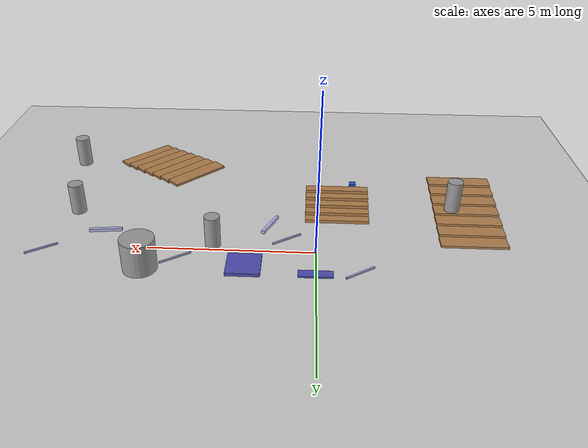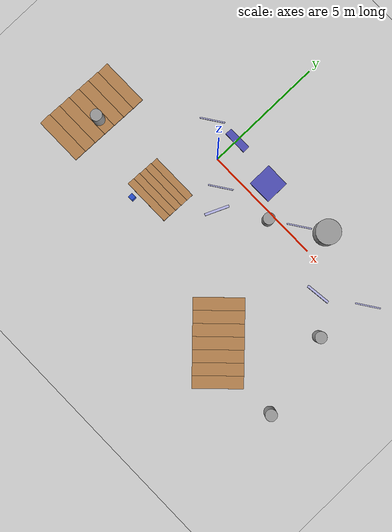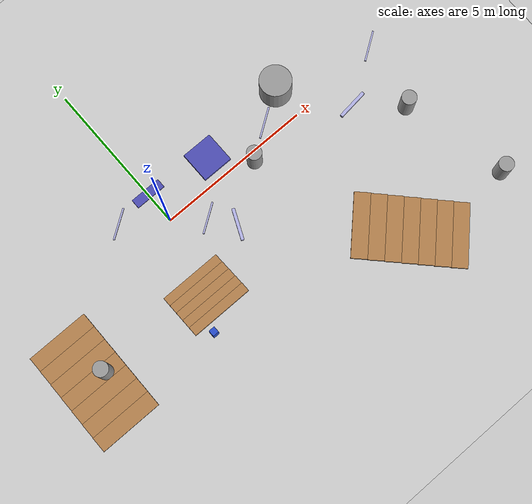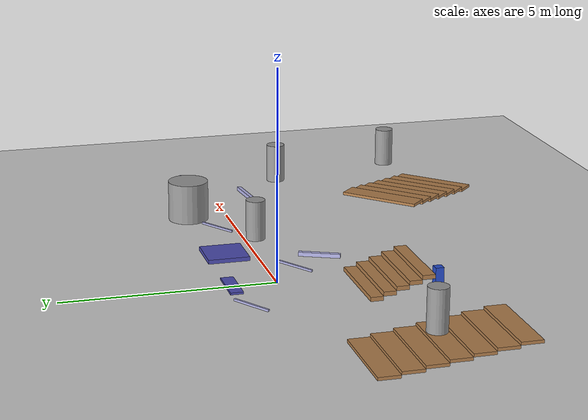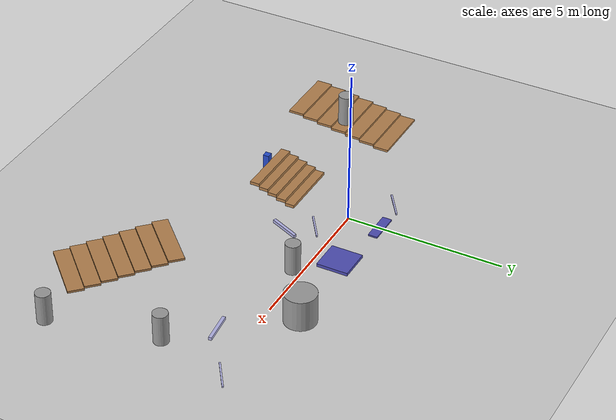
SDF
<sdf version="1.7">
 <world name="default">
  <light name="sun" type="directional">
   <pose>0 0 10 0 -0 0</pose>
   <diffuse>0.8 0.8 0.8 1</diffuse>
   <specular>0.2 0.2 0.2 1</specular>
   <attenuation>
    <range>1000</range>
    <constant>0.9</constant>
    <linear>0.01</linear>
    <quadratic>0.001</quadratic>
   </attenuation>
   <direction>-0.5 0.1 -0.9</direction>
   <spot><inner_angle>0</inner_angle><outer_angle>0</outer_angle><falloff>0</falloff></spot>
  </light>
  <model name="ground_plane">
   <static>1</static>
   <link name="link">
    <collision name="collision">
     <geometry><plane><normal>0 0 1</normal><size>100 100</size></plane></geometry>
     <surface>
      <contact><collide_bitmask>65535</collide_bitmask></contact>
      <friction><ode><mu>100</mu><mu2>50</mu2></ode></friction>
     </surface>
    </collision>
    <visual name="visual">
     <cast_shadows>0</cast_shadows>
     <geometry><plane><normal>0 0 1</normal><size>100 100</size></plane></geometry>
     <material>
      <script><uri>file://media/materials/scripts/gazebo.material</uri><name>Gazebo/Grey</name></script>
     </material>
    </visual>
   </link>
  </model>
  <gravity>0 0 -9.8</gravity>
  <magnetic_field>6e-06 2.3e-05 -4.2e-05</magnetic_field>
  <atmosphere type="adiabatic"/>
  <physics type="ode">
   <max_step_size>0.001</max_step_size>
   <real_time_factor>1</real_time_factor>
   <real_time_update_rate>1000</real_time_update_rate>
  </physics>
  <scene><ambient>0.4 0.4 0.4 1</ambient><background>0.7 0.7 0.7 1</background><shadows>1</shadows></scene>
  <spherical_coordinates>
   <surface_model>EARTH_WGS84</surface_model>
   <latitude_deg>0</latitude_deg>
   <longitude_deg>0</longitude_deg>
   <elevation>0</elevation>
   <heading_deg>0</heading_deg>
  </spherical_coordinates>
  <model name="block_h0.05">
   <link name="link">
    <inertial>
     <mass>1</mass>
     <inertia>
      <ixx>0.166667</ixx>
      <ixy>0</ixy>
      <ixz>0</ixz>
      <iyy>0.166667</iyy>
      <iyz>0</iyz>
      <izz>0.166667</izz>
     </inertia>
    </inertial>
    <visual name="visual">
     <geometry><box><size>1 0.3 0.05</size></box></geometry>
     <material>
      <script><name>Gazebo/Grey</name><uri>file://media/materials/scripts/gazebo.material</uri></script>
      <shader type="pixel"><normal_map>__default__</normal_map></shader>
      <ambient>0.3 0.3 0.7 1</ambient>
      <diffuse>0.7 0.7 0.7 1</diffuse>
      <specular>0.01 0.01 0.01 1</specular>
      <emissive>0 0 0 1</emissive>
     </material>
    </visual>
    <collision name="collision">
     <geometry><box><size>1 0.3 0.05</size></box></geometry>
     <surface>
      <friction>
       <ode><mu>1</mu><mu2>1</mu2><fdir1>0 0 0</fdir1><slip1>0</slip1><slip2>0</slip2></ode>
       <torsional>
        <coefficient>1</coefficient>
        <patch_radius>0</patch_radius>
        <surface_radius>0</surface_radius>
        <use_patch_radius>1</use_patch_radius>
        <ode><slip>0</slip></ode>
       </torsional>
      </friction>
      <bounce><restitution_coefficient>0</restitution_coefficient><threshold>1e+06</threshold></bounce>
      <contact>
       <collide_without_contact>0</collide_without_contact>
       <collide_without_contact_bitmask>1</collide_without_contact_bitmask>
       <collide_bitmask>1</collide_bitmask>
       <ode>
        <soft_cfm>0</soft_cfm>
        <soft_erp>0.2</soft_erp>
        <kp>1e+13</kp>
        <kd>1</kd>
        <max_vel>0.01</max_vel>
        <min_depth>0</min_depth>
       </ode>
       <bullet>
        <split_impulse>1</split_impulse>
        <split_impulse_penetration_threshold>-0.01</split_impulse_penetration_threshold>
        <soft_cfm>0</soft_cfm>
        <soft_erp>0.2</soft_erp>
        <kp>1e+13</kp>
        <kd>1</kd>
       </bullet>
      </contact>
     </surface>
    </collision>
   </link>
   <static>1</static>
   <pose>0.013429 1.05664 0.022806 0 -0 0</pose>
  </model>
  <model name="piple_0.05">
   <link name="link">
    <inertial>
     <mass>1</mass>
     <inertia>
      <ixx>0.166667</ixx>
      <ixy>0</ixy>
      <ixz>0</ixz>
      <iyy>0.166667</iyy>
      <iyz>0</iyz>
      <izz>0.166667</izz>
     </inertia>
    </inertial>
    <pose>0 0 0.05 0 -0 0</pose>
    <visual name="visual">
     <geometry><box><size>1 0.05 0.05</size></box></geometry>
     <material>
      <script><name>Gazebo/Grey</name><uri>file://media/materials/scripts/gazebo.material</uri></script>
      <shader type="pixel"><normal_map>__default__</normal_map></shader>
      <ambient>0.3 0.3 0.9 1</ambient>
      <diffuse>0.7 0.7 0.9 1</diffuse>
      <specular>0.01 0.01 0.01 1</specular>
      <emissive>0 0 0 1</emissive>
     </material>
    </visual>
    <collision name="collision">
     <geometry><box><size>1 0.05 0.05</size></box></geometry>
     <surface>
      <friction>
       <ode><mu>1</mu><mu2>1</mu2><fdir1>0 0 0</fdir1><slip1>0</slip1><slip2>0</slip2></ode>
       <torsional>
        <coefficient>1</coefficient>
        <patch_radius>0</patch_radius>
        <surface_radius>0</surface_radius>
        <use_patch_radius>1</use_patch_radius>
        <ode><slip>0</slip></ode>
       </torsional>
      </friction>
      <bounce><restitution_coefficient>0</restitution_coefficient><threshold>1e+06</threshold></bounce>
      <contact>
       <collide_without_contact>0</collide_without_contact>
       <collide_without_contact_bitmask>1</collide_without_contact_bitmask>
       <collide_bitmask>1</collide_bitmask>
       <ode>
        <soft_cfm>0</soft_cfm>
        <soft_erp>0.2</soft_erp>
        <kp>1e+13</kp>
        <kd>1</kd>
        <max_vel>0.01</max_vel>
        <min_depth>0</min_depth>
       </ode>
       <bullet>
        <split_impulse>1</split_impulse>
        <split_impulse_penetration_threshold>-0.01</split_impulse_penetration_threshold>
        <soft_cfm>0</soft_cfm>
        <soft_erp>0.2</soft_erp>
        <kp>1e+13</kp>
        <kd>1</kd>
       </bullet>
      </contact>
     </surface>
    </collision>
   </link>
   <static>1</static>
   <pose>-1.24232 0.917305 -0.025554 0 -0 0.596594</pose>
  </model>
  <model name="stair_h0.1">
   <pose>-0.659716 -2.43729 0 0 -0 0</pose>
   <link name="Stairs_14">
    <visual name="Stairs_14_Visual_0">
     <pose>0 0.6 0.05 0 -0 0</pose>
     <geometry><box><size>2 0.3 0.1</size></box></geometry>
     <material>
      <script><uri>file://media/materials/scripts/gazebo.material</uri><name>Gazebo/Wood</name></script>
      <ambient>1 1 1 1</ambient>
     </material>
     <meta><layer>0</layer></meta>
    </visual>
    <collision name="Stairs_14_Collision_0">
     <geometry><box><size>2 0.3 0.1</size></box></geometry>
     <pose>0 0.6 0.05 0 -0 0</pose>
    </collision>
    <visual name="Stairs_14_Visual_1">
     <pose>0 0.3 0.15 0 -0 0</pose>
     <geometry><box><size>2 0.3 0.1</size></box></geometry>
     <material>
      <script><uri>file://media/materials/scripts/gazebo.material</uri><name>Gazebo/Wood</name></script>
      <ambient>1 1 1 1</ambient>
     </material>
     <meta><layer>0</layer></meta>
    </visual>
    <collision name="Stairs_14_Collision_1">
     <geometry><box><size>2 0.3 0.1</size></box></geometry>
     <pose>0 0.3 0.15 0 -0 0</pose>
    </collision>
    <visual name="Stairs_14_Visual_2">
     <pose>0 0 0.25 0 -0 0</pose>
     <geometry><box><size>2 0.3 0.1</size></box></geometry>
     <material>
      <script><uri>file://media/materials/scripts/gazebo.material</uri><name>Gazebo/Wood</name></script>
      <ambient>1 1 1 1</ambient>
     </material>
     <meta><layer>0</layer></meta>
    </visual>
    <collision name="Stairs_14_Collision_2">
     <geometry><box><size>2 0.3 0.1</size></box></geometry>
     <pose>0 0 0.25 0 -0 0</pose>
    </collision>
    <visual name="Stairs_14_Visual_3">
     <pose>0 -0.3 0.35 0 -0 0</pose>
     <geometry><box><size>2 0.3 0.1</size></box></geometry>
     <material>
      <script><uri>file://media/materials/scripts/gazebo.material</uri><name>Gazebo/Wood</name></script>
      <ambient>1 1 1 1</ambient>
     </material>
     <meta><layer>0</layer></meta>
    </visual>
    <collision name="Stairs_14_Collision_3">
     <geometry><box><size>2 0.3 0.1</size></box></geometry>
     <pose>0 -0.3 0.35 0 -0 0</pose>
    </collision>
    <visual name="Stairs_14_Visual_4">
     <pose>0 -0.6 0.45 0 -0 0</pose>
     <geometry><box><size>2 0.3 0.1</size></box></geometry>
     <material>
      <script><uri>file://media/materials/scripts/gazebo.material</uri><name>Gazebo/Wood</name></script>
      <ambient>1 1 1 1</ambient>
     </material>
     <meta><layer>0</layer></meta>
    </visual>
    <collision name="Stairs_14_Collision_4">
     <geometry><box><size>2 0.3 0.1</size></box></geometry>
     <pose>0 -0.6 0.45 0 -0 0</pose>
    </collision>
   </link>
   <static>1</static>
  </model>
  <model name="block_0.5">
   <link name="link_1">
    <inertial>
     <mass>1.79769e+308</mass>
     <inertia>
      <ixx>1.79769e+308</ixx>
      <ixy>0</ixy>
      <ixz>0</ixz>
      <iyy>1.79769e+308</iyy>
      <iyz>0</iyz>
      <izz>1.79769e+308</izz>
     </inertia>
    </inertial>
    <pose>0 0 0.25 0 -0 0</pose>
    <kinematic>1</kinematic>
    <visual name="visual">
     <geometry><box><size>0.2 0.2 0.5</size></box></geometry>
     <material>
      <lighting>1</lighting>
      <script><uri>file://media/materials/scripts/gazebo.material</uri><name>Gazebo/Blue</name></script>
      <shader type="pixel"><normal_map>__default__</normal_map></shader>
      <ambient>0.5 0.3 0 1</ambient>
      <diffuse>0.7 0.7 0.8 1</diffuse>
      <specular>0.01 0.01 0.01 1</specular>
      <emissive>0.5 0 0 1</emissive>
     </material>
    </visual>
    <collision name="collision_9">
     <geometry><box><size>0.2 0.2 0.5</size></box></geometry>
     <surface>
      <friction>
       <ode><mu>1</mu><mu2>1</mu2><fdir1>0 0 0</fdir1><slip1>0</slip1><slip2>0</slip2></ode>
       <torsional>
        <coefficient>1</coefficient>
        <patch_radius>0</patch_radius>
        <surface_radius>0</surface_radius>
        <use_patch_radius>1</use_patch_radius>
        <ode><slip>0</slip></ode>
       </torsional>
      </friction>
      <bounce><restitution_coefficient>0</restitution_coefficient><threshold>1e+06</threshold></bounce>
      <contact>
       <collide_without_contact>0</collide_without_contact>
       <collide_without_contact_bitmask>1</collide_without_contact_bitmask>
       <collide_bitmask>1</collide_bitmask>
       <ode>
        <soft_cfm>0</soft_cfm>
        <soft_erp>0.2</soft_erp>
        <kp>1e+13</kp>
        <kd>1</kd>
        <max_vel>0.01</max_vel>
        <min_depth>0</min_depth>
       </ode>
       <bullet>
        <split_impulse>1</split_impulse>
        <split_impulse_penetration_threshold>-0.01</split_impulse_penetration_threshold>
        <soft_cfm>0</soft_cfm>
        <soft_erp>0.2</soft_erp>
        <kp>1e+13</kp>
        <kd>1</kd>
       </bullet>
      </contact>
     </surface>
    </collision>
   </link>
   <static>1</static>
   <pose>-1.19093 -3.43173 0 0 -0 0</pose>
  </model>
  <model name="stair_0.07h">
   <pose>5.13987 -4.93467 -0 0 -0 -2.35252</pose>
   <link name="Stairs_4">
    <visual name="Stairs_4_Visual_0">
     <pose>0 1.5 0.035714 0 -0 0</pose>
     <geometry><box><size>2 0.5 0.071429</size></box></geometry>
     <material>
      <script><uri>file://media/materials/scripts/gazebo.material</uri><name>Gazebo/Wood</name></script>
      <ambient>1 1 1 1</ambient>
     </material>
     <meta><layer>0</layer></meta>
    </visual>
    <collision name="Stairs_4_Collision_0">
     <geometry><box><size>2 0.5 0.071429</size></box></geometry>
     <pose>0 1.5 0.035714 0 -0 0</pose>
    </collision>
    <visual name="Stairs_4_Visual_1">
     <pose>0 1 0.107143 0 -0 0</pose>
     <geometry><box><size>2 0.5 0.071429</size></box></geometry>
     <material>
      <script><uri>file://media/materials/scripts/gazebo.material</uri><name>Gazebo/Wood</name></script>
      <ambient>1 1 1 1</ambient>
     </material>
     <meta><layer>0</layer></meta>
    </visual>
    <collision name="Stairs_4_Collision_1">
     <geometry><box><size>2 0.5 0.071429</size></box></geometry>
     <pose>0 1 0.107143 0 -0 0</pose>
    </collision>
    <visual name="Stairs_4_Visual_2">
     <pose>0 0.5 0.178571 0 -0 0</pose>
     <geometry><box><size>2 0.5 0.071429</size></box></geometry>
     <material>
      <script><uri>file://media/materials/scripts/gazebo.material</uri><name>Gazebo/Wood</name></script>
      <ambient>1 1 1 1</ambient>
     </material>
     <meta><layer>0</layer></meta>
    </visual>
    <collision name="Stairs_4_Collision_2">
     <geometry><box><size>2 0.5 0.071429</size></box></geometry>
     <pose>0 0.5 0.178571 0 -0 0</pose>
    </collision>
    <visual name="Stairs_4_Visual_3">
     <pose>0 0 0.25 0 -0 0</pose>
     <geometry><box><size>2 0.5 0.071429</size></box></geometry>
     <material>
      <script><uri>file://media/materials/scripts/gazebo.material</uri><name>Gazebo/Wood</name></script>
      <ambient>1 1 1 1</ambient>
     </material>
     <meta><layer>0</layer></meta>
    </visual>
    <collision name="Stairs_4_Collision_3">
     <geometry><box><size>2 0.5 0.071429</size></box></geometry>
     <pose>0 0 0.25 0 -0 0</pose>
    </collision>
    <visual name="Stairs_4_Visual_4">
     <pose>0 -0.5 0.321429 0 -0 0</pose>
     <geometry><box><size>2 0.5 0.071429</size></box></geometry>
     <material>
      <script><uri>file://media/materials/scripts/gazebo.material</uri><name>Gazebo/Wood</name></script>
      <ambient>1 1 1 1</ambient>
     </material>
     <meta><layer>0</layer></meta>
    </visual>
    <collision name="Stairs_4_Collision_4">
     <geometry><box><size>2 0.5 0.071429</size></box></geometry>
     <pose>0 -0.5 0.321429 0 -0 0</pose>
    </collision>
    <visual name="Stairs_4_Visual_5">
     <pose>0 -1 0.392857 0 -0 0</pose>
     <geometry><box><size>2 0.5 0.071429</size></box></geometry>
     <material>
      <script><uri>file://media/materials/scripts/gazebo.material</uri><name>Gazebo/Wood</name></script>
      <ambient>1 1 1 1</ambient>
     </material>
     <meta><layer>0</layer></meta>
    </visual>
    <collision name="Stairs_4_Collision_5">
     <geometry><box><size>2 0.5 0.071429</size></box></geometry>
     <pose>0 -1 0.392857 0 -0 0</pose>
    </collision>
    <visual name="Stairs_4_Visual_6">
     <pose>0 -1.5 0.464286 0 -0 0</pose>
     <geometry><box><size>2 0.5 0.071429</size></box></geometry>
     <material>
      <script><uri>file://media/materials/scripts/gazebo.material</uri><name>Gazebo/Wood</name></script>
      <ambient>1 1 1 1</ambient>
     </material>
     <meta><layer>0</layer></meta>
    </visual>
    <collision name="Stairs_4_Collision_6">
     <geometry><box><size>2 0.5 0.071429</size></box></geometry>
     <pose>0 -1.5 0.464286 0 -0 0</pose>
    </collision>
   </link>
   <static>1</static>
  </model>
  <model name="block_h0.1">
   <link name="link">
    <inertial>
     <mass>1</mass>
     <inertia>
      <ixx>0.166667</ixx>
      <ixy>0</ixy>
      <ixz>0</ixz>
      <iyy>0.166667</iyy>
      <iyz>0</iyz>
      <izz>0.166667</izz>
     </inertia>
    </inertial>
    <pose>0 0 0.05 0 -0 0</pose>
    <visual name="visual">
     <geometry><box><size>1 1 0.1</size></box></geometry>
     <material>
      <script><name>Gazebo/Grey</name><uri>file://media/materials/scripts/gazebo.material</uri></script>
      <shader type="pixel"><normal_map>__default__</normal_map></shader>
      <ambient>0.3 0.3 0.7 1</ambient>
      <diffuse>0.7 0.7 0.7 1</diffuse>
      <specular>0.01 0.01 0.01 1</specular>
      <emissive>0 0 0 1</emissive>
     </material>
    </visual>
    <collision name="collision">
     <geometry><box><size>1 1 0.1</size></box></geometry>
     <surface>
      <friction>
       <ode><mu>1</mu><mu2>1</mu2><fdir1>0 0 0</fdir1><slip1>0</slip1><slip2>0</slip2></ode>
       <torsional>
        <coefficient>1</coefficient>
        <patch_radius>0</patch_radius>
        <surface_radius>0</surface_radius>
        <use_patch_radius>1</use_patch_radius>
        <ode><slip>0</slip></ode>
       </torsional>
      </friction>
      <bounce><restitution_coefficient>0</restitution_coefficient><threshold>1e+06</threshold></bounce>
      <contact>
       <collide_without_contact>0</collide_without_contact>
       <collide_without_contact_bitmask>1</collide_without_contact_bitmask>
       <collide_bitmask>1</collide_bitmask>
       <ode>
        <soft_cfm>0</soft_cfm>
        <soft_erp>0.2</soft_erp>
        <kp>1e+13</kp>
        <kd>1</kd>
        <max_vel>0.01</max_vel>
        <min_depth>0</min_depth>
       </ode>
       <bullet>
        <split_impulse>1</split_impulse>
        <split_impulse_penetration_threshold>-0.01</split_impulse_penetration_threshold>
        <soft_cfm>0</soft_cfm>
        <soft_erp>0.2</soft_erp>
        <kp>1e+13</kp>
        <kd>1</kd>
       </bullet>
      </contact>
     </surface>
    </collision>
   </link>
   <static>1</static>
   <pose>2.06744 0.744676 0 0 -0 0</pose>
  </model>
  <model name="piple_0.1_clone">
   <link name="link">
    <inertial>
     <mass>1</mass>
     <inertia>
      <ixx>0.166667</ixx>
      <ixy>0</ixy>
      <ixz>0</ixz>
      <iyy>0.166667</iyy>
      <iyz>0</iyz>
      <izz>0.166667</izz>
     </inertia>
    </inertial>
    <pose>0 0 0.05 0 -0 0</pose>
    <visual name="visual">
     <geometry><box><size>1 0.1 0.1</size></box></geometry>
     <material>
      <script><name>Gazebo/Grey</name><uri>file://media/materials/scripts/gazebo.material</uri></script>
      <shader type="pixel"><normal_map>__default__</normal_map></shader>
      <ambient>0.3 0.3 0.9 1</ambient>
      <diffuse>0.7 0.7 0.9 1</diffuse>
      <specular>0.01 0.01 0.01 1</specular>
      <emissive>0 0 0 1</emissive>
     </material>
    </visual>
    <collision name="collision">
     <geometry><box><size>1 0.1 0.1</size></box></geometry>
     <surface>
      <friction>
       <ode><mu>1</mu><mu2>1</mu2><fdir1>0 0 0</fdir1><slip1>0</slip1><slip2>0</slip2></ode>
       <torsional>
        <coefficient>1</coefficient>
        <patch_radius>0</patch_radius>
        <surface_radius>0</surface_radius>
        <use_patch_radius>1</use_patch_radius>
        <ode><slip>0</slip></ode>
       </torsional>
      </friction>
      <bounce><restitution_coefficient>0</restitution_coefficient><threshold>1e+06</threshold></bounce>
      <contact>
       <collide_without_contact>0</collide_without_contact>
       <collide_without_contact_bitmask>1</collide_without_contact_bitmask>
       <collide_bitmask>1</collide_bitmask>
       <ode>
        <soft_cfm>0</soft_cfm>
        <soft_erp>0.2</soft_erp>
        <kp>1e+13</kp>
        <kd>1</kd>
        <max_vel>0.01</max_vel>
        <min_depth>0</min_depth>
       </ode>
       <bullet>
        <split_impulse>1</split_impulse>
        <split_impulse_penetration_threshold>-0.01</split_impulse_penetration_threshold>
        <soft_cfm>0</soft_cfm>
        <soft_erp>0.2</soft_erp>
        <kp>1e+13</kp>
        <kd>1</kd>
       </bullet>
      </contact>
     </surface>
    </collision>
   </link>
   <static>1</static>
   <pose>1.42531 -1.41927 0 0 -0 1.15379</pose>
  </model>
  <model name="piple_0.05_clone">
   <link name="link">
    <inertial>
     <mass>1</mass>
     <inertia>
      <ixx>0.166667</ixx>
      <ixy>0</ixy>
      <ixz>0</ixz>
      <iyy>0.166667</iyy>
      <iyz>0</iyz>
      <izz>0.166667</izz>
     </inertia>
    </inertial>
    <pose>0 0 0.05 0 -0 0</pose>
    <visual name="visual">
     <geometry><box><size>1 0.05 0.05</size></box></geometry>
     <material>
      <script><name>Gazebo/Grey</name><uri>file://media/materials/scripts/gazebo.material</uri></script>
      <shader type="pixel"><normal_map>__default__</normal_map></shader>
      <ambient>0.3 0.3 0.9 1</ambient>
      <diffuse>0.7 0.7 0.9 1</diffuse>
      <specular>0.01 0.01 0.01 1</specular>
      <emissive>0 0 0 1</emissive>
     </material>
    </visual>
    <collision name="collision">
     <geometry><box><size>1 0.05 0.05</size></box></geometry>
     <surface>
      <friction>
       <ode><mu>1</mu><mu2>1</mu2><fdir1>0 0 0</fdir1><slip1>0</slip1><slip2>0</slip2></ode>
       <torsional>
        <coefficient>1</coefficient>
        <patch_radius>0</patch_radius>
        <surface_radius>0</surface_radius>
        <use_patch_radius>1</use_patch_radius>
        <ode><slip>0</slip></ode>
       </torsional>
      </friction>
      <bounce><restitution_coefficient>0</restitution_coefficient><threshold>1e+06</threshold></bounce>
      <contact>
       <collide_without_contact>0</collide_without_contact>
       <collide_without_contact_bitmask>1</collide_without_contact_bitmask>
       <collide_bitmask>1</collide_bitmask>
       <ode>
        <soft_cfm>0</soft_cfm>
        <soft_erp>0.2</soft_erp>
        <kp>1e+13</kp>
        <kd>1</kd>
        <max_vel>0.01</max_vel>
        <min_depth>0</min_depth>
       </ode>
       <bullet>
        <split_impulse>1</split_impulse>
        <split_impulse_penetration_threshold>-0.01</split_impulse_penetration_threshold>
        <soft_cfm>0</soft_cfm>
        <soft_erp>0.2</soft_erp>
        <kp>1e+13</kp>
        <kd>1</kd>
       </bullet>
      </contact>
     </surface>
    </collision>
   </link>
   <static>1</static>
   <pose>8.12725 0.204229 -0.025554 0 -0 0.596594</pose>
  </model>
  <model name="piple_0.1_clone_0">
   <link name="link">
    <inertial>
     <mass>1</mass>
     <inertia>
      <ixx>0.166667</ixx>
      <ixy>0</ixy>
      <ixz>0</ixz>
      <iyy>0.166667</iyy>
      <iyz>0</iyz>
      <izz>0.166667</izz>
     </inertia>
    </inertial>
    <pose>0 0 0.05 0 -0 0</pose>
    <visual name="visual">
     <geometry><box><size>1 0.1 0.1</size></box></geometry>
     <material>
      <script><name>Gazebo/Grey</name><uri>file://media/materials/scripts/gazebo.material</uri></script>
      <shader type="pixel"><normal_map>__default__</normal_map></shader>
      <ambient>0.3 0.3 0.9 1</ambient>
      <diffuse>0.7 0.7 0.9 1</diffuse>
      <specular>0.01 0.01 0.01 1</specular>
      <emissive>0 0 0 1</emissive>
     </material>
    </visual>
    <collision name="collision">
     <geometry><box><size>1 0.1 0.1</size></box></geometry>
     <surface>
      <friction>
       <ode><mu>1</mu><mu2>1</mu2><fdir1>0 0 0</fdir1><slip1>0</slip1><slip2>0</slip2></ode>
       <torsional>
        <coefficient>1</coefficient>
        <patch_radius>0</patch_radius>
        <surface_radius>0</surface_radius>
        <use_patch_radius>1</use_patch_radius>
        <ode><slip>0</slip></ode>
       </torsional>
      </friction>
      <bounce><restitution_coefficient>0</restitution_coefficient><threshold>1e+06</threshold></bounce>
      <contact>
       <collide_without_contact>0</collide_without_contact>
       <collide_without_contact_bitmask>1</collide_without_contact_bitmask>
       <collide_bitmask>1</collide_bitmask>
       <ode>
        <soft_cfm>0</soft_cfm>
        <soft_erp>0.2</soft_erp>
        <kp>1e+13</kp>
        <kd>1</kd>
        <max_vel>0.01</max_vel>
        <min_depth>0</min_depth>
       </ode>
       <bullet>
        <split_impulse>1</split_impulse>
        <split_impulse_penetration_threshold>-0.01</split_impulse_penetration_threshold>
        <soft_cfm>0</soft_cfm>
        <soft_erp>0.2</soft_erp>
        <kp>1e+13</kp>
        <kd>1</kd>
       </bullet>
      </contact>
     </surface>
    </collision>
   </link>
   <static>1</static>
   <pose>6.47024 -0.870101 0 0 -0 0.115021</pose>
  </model>
  <model name="unit_cylinder">
   <link name="link">
    <inertial>
     <mass>1</mass>
     <inertia><ixx>0.145833</ixx><ixy>0</ixy><ixz>0</ixz><iyy>0.145833</iyy><iyz>0</iyz><izz>0.125</izz></inertia>
    </inertial>
    <visual name="visual">
     <geometry><cylinder><radius>0.500002</radius><length>1</length></cylinder></geometry>
     <material>
      <script><name>Gazebo/Grey</name><uri>file://media/materials/scripts/gazebo.material</uri></script>
      <shader type="pixel"><normal_map>__default__</normal_map></shader>
      <ambient>0.3 0.3 0.3 1</ambient>
      <diffuse>0.7 0.7 0.7 1</diffuse>
      <specular>0.01 0.01 0.01 1</specular>
      <emissive>1 0 0 1</emissive>
     </material>
    </visual>
    <collision name="collision">
     <geometry><cylinder><radius>0.500002</radius><length>1</length></cylinder></geometry>
     <surface>
      <friction>
       <ode><mu>1</mu><mu2>1</mu2><fdir1>0 0 0</fdir1><slip1>0</slip1><slip2>0</slip2></ode>
       <torsional>
        <coefficient>1</coefficient>
        <patch_radius>0</patch_radius>
        <surface_radius>0</surface_radius>
        <use_patch_radius>1</use_patch_radius>
        <ode><slip>0</slip></ode>
       </torsional>
      </friction>
      <bounce><restitution_coefficient>0</restitution_coefficient><threshold>1e+06</threshold></bounce>
      <contact>
       <collide_without_contact>0</collide_without_contact>
       <collide_without_contact_bitmask>1</collide_without_contact_bitmask>
       <collide_bitmask>1</collide_bitmask>
       <ode>
        <soft_cfm>0</soft_cfm>
        <soft_erp>0.2</soft_erp>
        <kp>1e+13</kp>
        <kd>1</kd>
        <max_vel>0.01</max_vel>
        <min_depth>0</min_depth>
       </ode>
       <bullet>
        <split_impulse>1</split_impulse>
        <split_impulse_penetration_threshold>-0.01</split_impulse_penetration_threshold>
        <soft_cfm>0</soft_cfm>
        <soft_erp>0.2</soft_erp>
        <kp>1e+13</kp>
        <kd>1</kd>
       </bullet>
      </contact>
     </surface>
    </collision>
   </link>
   <static>0</static>
   <pose>4.99442 0.99159 0.5 1e-06 0 -7e-06</pose>
  </model>
  <model name="unit_cylinder_clone">
   <link name="link">
    <inertial>
     <mass>1</mass>
     <inertia><ixx>0.145833</ixx><ixy>0</ixy><ixz>0</ixz><iyy>0.145833</iyy><iyz>0</iyz><izz>0.125</izz></inertia>
    </inertial>
    <visual name="visual">
     <geometry><cylinder><radius>0.235306</radius><length>1</length></cylinder></geometry>
     <material>
      <script><name>Gazebo/Grey</name><uri>file://media/materials/scripts/gazebo.material</uri></script>
      <shader type="pixel"><normal_map>__default__</normal_map></shader>
      <ambient>0.3 0.3 0.3 1</ambient>
      <diffuse>0.7 0.7 0.7 1</diffuse>
      <specular>0.01 0.01 0.01 1</specular>
      <emissive>1 0 0 1</emissive>
     </material>
    </visual>
    <collision name="collision">
     <geometry><cylinder><radius>0.235306</radius><length>1</length></cylinder></geometry>
     <surface>
      <friction>
       <ode><mu>1</mu><mu2>1</mu2><fdir1>0 0 0</fdir1><slip1>0</slip1><slip2>0</slip2></ode>
       <torsional>
        <coefficient>1</coefficient>
        <patch_radius>0</patch_radius>
        <surface_radius>0</surface_radius>
        <use_patch_radius>1</use_patch_radius>
        <ode><slip>0</slip></ode>
       </torsional>
      </friction>
      <bounce><restitution_coefficient>0</restitution_coefficient><threshold>1e+06</threshold></bounce>
      <contact>
       <collide_without_contact>0</collide_without_contact>
       <collide_without_contact_bitmask>1</collide_without_contact_bitmask>
       <collide_bitmask>1</collide_bitmask>
       <ode>
        <soft_cfm>0</soft_cfm>
        <soft_erp>0.2</soft_erp>
        <kp>1e+13</kp>
        <kd>1</kd>
        <max_vel>0.01</max_vel>
        <min_depth>0</min_depth>
       </ode>
       <bullet>
        <split_impulse>1</split_impulse>
        <split_impulse_penetration_threshold>-0.01</split_impulse_penetration_threshold>
        <soft_cfm>0</soft_cfm>
        <soft_erp>0.2</soft_erp>
        <kp>1e+13</kp>
        <kd>1</kd>
       </bullet>
      </contact>
     </surface>
    </collision>
   </link>
   <static>0</static>
   <pose>7.63843 -1.99558 0.499991 0 -0 0</pose>
  </model>
  <model name="unit_cylinder_clone_0">
   <link name="link">
    <inertial>
     <mass>1</mass>
     <inertia><ixx>0.145833</ixx><ixy>0</ixy><ixz>0</ixz><iyy>0.145833</iyy><iyz>0</iyz><izz>0.125</izz></inertia>
    </inertial>
    <visual name="visual">
     <geometry><cylinder><radius>0.235306</radius><length>1</length></cylinder></geometry>
     <material>
      <script><name>Gazebo/Grey</name><uri>file://media/materials/scripts/gazebo.material</uri></script>
      <shader type="pixel"><normal_map>__default__</normal_map></shader>
      <ambient>0.3 0.3 0.3 1</ambient>
      <diffuse>0.7 0.7 0.7 1</diffuse>
      <specular>0.01 0.01 0.01 1</specular>
      <emissive>1 0 0 1</emissive>
     </material>
    </visual>
    <collision name="collision">
     <geometry><cylinder><radius>0.235306</radius><length>1</length></cylinder></geometry>
     <surface>
      <friction>
       <ode><mu>1</mu><mu2>1</mu2><fdir1>0 0 0</fdir1><slip1>0</slip1><slip2>0</slip2></ode>
       <torsional>
        <coefficient>1</coefficient>
        <patch_radius>0</patch_radius>
        <surface_radius>0</surface_radius>
        <use_patch_radius>1</use_patch_radius>
        <ode><slip>0</slip></ode>
       </torsional>
      </friction>
      <bounce><restitution_coefficient>0</restitution_coefficient><threshold>1e+06</threshold></bounce>
      <contact>
       <collide_without_contact>0</collide_without_contact>
       <collide_without_contact_bitmask>1</collide_without_contact_bitmask>
       <collide_bitmask>1</collide_bitmask>
       <ode>
        <soft_cfm>0</soft_cfm>
        <soft_erp>0.2</soft_erp>
        <kp>1e+13</kp>
        <kd>1</kd>
        <max_vel>0.01</max_vel>
        <min_depth>0</min_depth>
       </ode>
       <bullet>
        <split_impulse>1</split_impulse>
        <split_impulse_penetration_threshold>-0.01</split_impulse_penetration_threshold>
        <soft_cfm>0</soft_cfm>
        <soft_erp>0.2</soft_erp>
        <kp>1e+13</kp>
        <kd>1</kd>
       </bullet>
      </contact>
     </surface>
    </collision>
   </link>
   <static>0</static>
   <pose>8.41008 -5.35552 0.499999 1e-06 -0 -4e-06</pose>
  </model>
  <model name="piple_0.05_clone_clone">
   <link name="link">
    <inertial>
     <mass>1</mass>
     <inertia>
      <ixx>0.166667</ixx>
      <ixy>0</ixy>
      <ixz>0</ixz>
      <iyy>0.166667</iyy>
      <iyz>0</iyz>
      <izz>0.166667</izz>
     </inertia>
    </inertial>
    <pose>0 0 0.05 0 -0 0</pose>
    <visual name="visual">
     <geometry><box><size>1 0.05 0.05</size></box></geometry>
     <material>
      <script><name>Gazebo/Grey</name><uri>file://media/materials/scripts/gazebo.material</uri></script>
      <shader type="pixel"><normal_map>__default__</normal_map></shader>
      <ambient>0.3 0.3 0.9 1</ambient>
      <diffuse>0.7 0.7 0.9 1</diffuse>
      <specular>0.01 0.01 0.01 1</specular>
      <emissive>0 0 0 1</emissive>
     </material>
    </visual>
    <collision name="collision">
     <geometry><box><size>1 0.05 0.05</size></box></geometry>
     <surface>
      <friction>
       <ode><mu>1</mu><mu2>1</mu2><fdir1>0 0 0</fdir1><slip1>0</slip1><slip2>0</slip2></ode>
       <torsional>
        <coefficient>1</coefficient>
        <patch_radius>0</patch_radius>
        <surface_radius>0</surface_radius>
        <use_patch_radius>1</use_patch_radius>
        <ode><slip>0</slip></ode>
       </torsional>
      </friction>
      <bounce><restitution_coefficient>0</restitution_coefficient><threshold>1e+06</threshold></bounce>
      <contact>
       <collide_without_contact>0</collide_without_contact>
       <collide_without_contact_bitmask>1</collide_without_contact_bitmask>
       <collide_bitmask>1</collide_bitmask>
       <ode>
        <soft_cfm>0</soft_cfm>
        <soft_erp>0.2</soft_erp>
        <kp>1e+13</kp>
        <kd>1</kd>
        <max_vel>0.01</max_vel>
        <min_depth>0</min_depth>
       </ode>
       <bullet>
        <split_impulse>1</split_impulse>
        <split_impulse_penetration_threshold>-0.01</split_impulse_penetration_threshold>
        <soft_cfm>0</soft_cfm>
        <soft_erp>0.2</soft_erp>
        <kp>1e+13</kp>
        <kd>1</kd>
       </bullet>
      </contact>
     </surface>
    </collision>
   </link>
   <static>1</static>
   <pose>4.08435 0.453342 -0.025554 0 -0 0.596594</pose>
  </model>
  <model name="stair_0.07h_0">
   <pose>-4.70859 -2.24846 0 0 -0 0</pose>
   <link name="Stairs_4">
    <visual name="Stairs_4_Visual_0">
     <pose>0 1.5 0.035714 0 -0 0</pose>
     <geometry><box><size>2 0.5 0.071429</size></box></geometry>
     <material>
      <script><uri>file://media/materials/scripts/gazebo.material</uri><name>Gazebo/Wood</name></script>
      <ambient>1 1 1 1</ambient>
     </material>
     <meta><layer>0</layer></meta>
    </visual>
    <collision name="Stairs_4_Collision_0">
     <geometry><box><size>2 0.5 0.071429</size></box></geometry>
     <pose>0 1.5 0.035714 0 -0 0</pose>
    </collision>
    <visual name="Stairs_4_Visual_1">
     <pose>0 1 0.107143 0 -0 0</pose>
     <geometry><box><size>2 0.5 0.071429</size></box></geometry>
     <material>
      <script><uri>file://media/materials/scripts/gazebo.material</uri><name>Gazebo/Wood</name></script>
      <ambient>1 1 1 1</ambient>
     </material>
     <meta><layer>0</layer></meta>
    </visual>
    <collision name="Stairs_4_Collision_1">
     <geometry><box><size>2 0.5 0.071429</size></box></geometry>
     <pose>0 1 0.107143 0 -0 0</pose>
    </collision>
    <visual name="Stairs_4_Visual_2">
     <pose>0 0.5 0.178571 0 -0 0</pose>
     <geometry><box><size>2 0.5 0.071429</size></box></geometry>
     <material>
      <script><uri>file://media/materials/scripts/gazebo.material</uri><name>Gazebo/Wood</name></script>
      <ambient>1 1 1 1</ambient>
     </material>
     <meta><layer>0</layer></meta>
    </visual>
    <collision name="Stairs_4_Collision_2">
     <geometry><box><size>2 0.5 0.071429</size></box></geometry>
     <pose>0 0.5 0.178571 0 -0 0</pose>
    </collision>
    <visual name="Stairs_4_Visual_3">
     <pose>0 0 0.25 0 -0 0</pose>
     <geometry><box><size>2 0.5 0.071429</size></box></geometry>
     <material>
      <script><uri>file://media/materials/scripts/gazebo.material</uri><name>Gazebo/Wood</name></script>
      <ambient>1 1 1 1</ambient>
     </material>
     <meta><layer>0</layer></meta>
    </visual>
    <collision name="Stairs_4_Collision_3">
     <geometry><box><size>2 0.5 0.071429</size></box></geometry>
     <pose>0 0 0.25 0 -0 0</pose>
    </collision>
    <visual name="Stairs_4_Visual_4">
     <pose>0 -0.5 0.321429 0 -0 0</pose>
     <geometry><box><size>2 0.5 0.071429</size></box></geometry>
     <material>
      <script><uri>file://media/materials/scripts/gazebo.material</uri><name>Gazebo/Wood</name></script>
      <ambient>1 1 1 1</ambient>
     </material>
     <meta><layer>0</layer></meta>
    </visual>
    <collision name="Stairs_4_Collision_4">
     <geometry><box><size>2 0.5 0.071429</size></box></geometry>
     <pose>0 -0.5 0.321429 0 -0 0</pose>
    </collision>
    <visual name="Stairs_4_Visual_5">
     <pose>0 -1 0.392857 0 -0 0</pose>
     <geometry><box><size>2 0.5 0.071429</size></box></geometry>
     <material>
      <script><uri>file://media/materials/scripts/gazebo.material</uri><name>Gazebo/Wood</name></script>
      <ambient>1 1 1 1</ambient>
     </material>
     <meta><layer>0</layer></meta>
    </visual>
    <collision name="Stairs_4_Collision_5">
     <geometry><box><size>2 0.5 0.071429</size></box></geometry>
     <pose>0 -1 0.392857 0 -0 0</pose>
    </collision>
    <visual name="Stairs_4_Visual_6">
     <pose>0 -1.5 0.464286 0 -0 0</pose>
     <geometry><box><size>2 0.5 0.071429</size></box></geometry>
     <material>
      <script><uri>file://media/materials/scripts/gazebo.material</uri><name>Gazebo/Wood</name></script>
      <ambient>1 1 1 1</ambient>
     </material>
     <meta><layer>0</layer></meta>
    </visual>
    <collision name="Stairs_4_Collision_6">
     <geometry><box><size>2 0.5 0.071429</size></box></geometry>
     <pose>0 -1.5 0.464286 0 -0 0</pose>
    </collision>
   </link>
   <static>1</static>
  </model>
  <model name="piple_0.05_clone_0">
   <link name="link">
    <inertial>
     <mass>1</mass>
     <inertia>
      <ixx>0.166667</ixx>
      <ixy>0</ixy>
      <ixz>0</ixz>
      <iyy>0.166667</iyy>
      <iyz>0</iyz>
      <izz>0.166667</izz>
     </inertia>
    </inertial>
    <pose>0 0 0.05 0 -0 0</pose>
    <visual name="visual">
     <geometry><box><size>1 0.05 0.05</size></box></geometry>
     <material>
      <script><name>Gazebo/Grey</name><uri>file://media/materials/scripts/gazebo.material</uri></script>
      <shader type="pixel"><normal_map>__default__</normal_map></shader>
      <ambient>0.3 0.3 0.9 1</ambient>
      <diffuse>0.7 0.7 0.9 1</diffuse>
      <specular>0.01 0.01 0.01 1</specular>
      <emissive>0 0 0 1</emissive>
     </material>
    </visual>
    <collision name="collision">
     <geometry><box><size>1 0.05 0.05</size></box></geometry>
     <surface>
      <friction>
       <ode><mu>1</mu><mu2>1</mu2><fdir1>0 0 0</fdir1><slip1>0</slip1><slip2>0</slip2></ode>
       <torsional>
        <coefficient>1</coefficient>
        <patch_radius>0</patch_radius>
        <surface_radius>0</surface_radius>
        <use_patch_radius>1</use_patch_radius>
        <ode><slip>0</slip></ode>
       </torsional>
      </friction>
      <bounce><restitution_coefficient>0</restitution_coefficient><threshold>1e+06</threshold></bounce>
      <contact>
       <collide_without_contact>0</collide_without_contact>
       <collide_without_contact_bitmask>1</collide_without_contact_bitmask>
       <collide_bitmask>1</collide_bitmask>
       <ode>
        <soft_cfm>0</soft_cfm>
        <soft_erp>0.2</soft_erp>
        <kp>1e+13</kp>
        <kd>1</kd>
        <max_vel>0.01</max_vel>
        <min_depth>0</min_depth>
       </ode>
       <bullet>
        <split_impulse>1</split_impulse>
        <split_impulse_penetration_threshold>-0.01</split_impulse_penetration_threshold>
        <soft_cfm>0</soft_cfm>
        <soft_erp>0.2</soft_erp>
        <kp>1e+13</kp>
        <kd>1</kd>
       </bullet>
      </contact>
     </surface>
    </collision>
   </link>
   <static>1</static>
   <pose>-4.60529 -2.37301 -0.025554 0 -0 0.596594</pose>
  </model>
  <model name="unit_cylinder_clone_1_clone">
   <link name="link">
    <inertial>
     <mass>1</mass>
     <inertia><ixx>0.145833</ixx><ixy>0</ixy><ixz>0</ixz><iyy>0.145833</iyy><iyz>0</iyz><izz>0.125</izz></inertia>
    </inertial>
    <visual name="visual">
     <geometry><cylinder><radius>0.235306</radius><length>1</length></cylinder></geometry>
     <material>
      <script><name>Gazebo/Grey</name><uri>file://media/materials/scripts/gazebo.material</uri></script>
      <shader type="pixel"><normal_map>__default__</normal_map></shader>
      <ambient>0.3 0.3 0.3 1</ambient>
      <diffuse>0.7 0.7 0.7 1</diffuse>
      <specular>0.01 0.01 0.01 1</specular>
      <emissive>1 0 0 1</emissive>
     </material>
    </visual>
    <collision name="collision">
     <geometry><cylinder><radius>0.235306</radius><length>1</length></cylinder></geometry>
     <surface>
      <friction>
       <ode><mu>1</mu><mu2>1</mu2><fdir1>0 0 0</fdir1><slip1>0</slip1><slip2>0</slip2></ode>
       <torsional>
        <coefficient>1</coefficient>
        <patch_radius>0</patch_radius>
        <surface_radius>0</surface_radius>
        <use_patch_radius>1</use_patch_radius>
        <ode><slip>0</slip></ode>
       </torsional>
      </friction>
      <bounce><restitution_coefficient>0</restitution_coefficient><threshold>1e+06</threshold></bounce>
      <contact>
       <collide_without_contact>0</collide_without_contact>
       <collide_without_contact_bitmask>1</collide_without_contact_bitmask>
       <collide_bitmask>1</collide_bitmask>
       <ode>
        <soft_cfm>0</soft_cfm>
        <soft_erp>0.2</soft_erp>
        <kp>1e+13</kp>
        <kd>1</kd>
        <max_vel>0.01</max_vel>
        <min_depth>0</min_depth>
       </ode>
       <bullet>
        <split_impulse>1</split_impulse>
        <split_impulse_penetration_threshold>-0.01</split_impulse_penetration_threshold>
        <soft_cfm>0</soft_cfm>
        <soft_erp>0.2</soft_erp>
        <kp>1e+13</kp>
        <kd>1</kd>
       </bullet>
      </contact>
     </surface>
    </collision>
   </link>
   <static>1</static>
   <pose>-4.26745 -2.26296 0.785714 -3e-06 -0 0.005667</pose>
  </model>
  <model name="unit_cylinder_clone_1">
   <link name="link">
    <inertial>
     <mass>1</mass>
     <inertia><ixx>0.145833</ixx><ixy>0</ixy><ixz>0</ixz><iyy>0.145833</iyy><iyz>0</iyz><izz>0.125</izz></inertia>
    </inertial>
    <visual name="visual">
     <geometry><cylinder><radius>0.235306</radius><length>1</length></cylinder></geometry>
     <material>
      <script><name>Gazebo/Grey</name><uri>file://media/materials/scripts/gazebo.material</uri></script>
      <shader type="pixel"><normal_map>__default__</normal_map></shader>
      <ambient>0.3 0.3 0.3 1</ambient>
      <diffuse>0.7 0.7 0.7 1</diffuse>
      <specular>0.01 0.01 0.01 1</specular>
      <emissive>1 0 0 1</emissive>
     </material>
    </visual>
    <collision name="collision">
     <geometry><cylinder><radius>0.235306</radius><length>1</length></cylinder></geometry>
     <surface>
      <friction>
       <ode><mu>1</mu><mu2>1</mu2><fdir1>0 0 0</fdir1><slip1>0</slip1><slip2>0</slip2></ode>
       <torsional>
        <coefficient>1</coefficient>
        <patch_radius>0</patch_radius>
        <surface_radius>0</surface_radius>
        <use_patch_radius>1</use_patch_radius>
        <ode><slip>0</slip></ode>
       </torsional>
      </friction>
      <bounce><restitution_coefficient>0</restitution_coefficient><threshold>1e+06</threshold></bounce>
      <contact>
       <collide_without_contact>0</collide_without_contact>
       <collide_without_contact_bitmask>1</collide_without_contact_bitmask>
       <collide_bitmask>1</collide_bitmask>
       <ode>
        <soft_cfm>0</soft_cfm>
        <soft_erp>0.2</soft_erp>
        <kp>1e+13</kp>
        <kd>1</kd>
        <max_vel>0.01</max_vel>
        <min_depth>0</min_depth>
       </ode>
       <bullet>
        <split_impulse>1</split_impulse>
        <split_impulse_penetration_threshold>-0.01</split_impulse_penetration_threshold>
        <soft_cfm>0</soft_cfm>
        <soft_erp>0.2</soft_erp>
        <kp>1e+13</kp>
        <kd>1</kd>
       </bullet>
      </contact>
     </surface>
    </collision>
   </link>
   <static>0</static>
   <pose>3.07173 -0.273577 0.5 0 0 -7e-06</pose>
  </model>
  <model name="piple_0.05_clone_clone_0">
   <link name="link">
    <inertial>
     <mass>1</mass>
     <inertia>
      <ixx>0.166667</ixx>
      <ixy>0</ixy>
      <ixz>0</ixz>
      <iyy>0.166667</iyy>
      <iyz>0</iyz>
      <izz>0.166667</izz>
     </inertia>
    </inertial>
    <pose>0 0 0.05 0 -0 0</pose>
    <visual name="visual">
     <geometry><box><size>1 0.05 0.05</size></box></geometry>
     <material>
      <script><name>Gazebo/Grey</name><uri>file://media/materials/scripts/gazebo.material</uri></script>
      <shader type="pixel"><normal_map>__default__</normal_map></shader>
      <ambient>0.3 0.3 0.9 1</ambient>
      <diffuse>0.7 0.7 0.9 1</diffuse>
      <specular>0.01 0.01 0.01 1</specular>
      <emissive>0 0 0 1</emissive>
     </material>
    </visual>
    <collision name="collision">
     <geometry><box><size>1 0.05 0.05</size></box></geometry>
     <surface>
      <friction>
       <ode><mu>1</mu><mu2>1</mu2><fdir1>0 0 0</fdir1><slip1>0</slip1><slip2>0</slip2></ode>
       <torsional>
        <coefficient>1</coefficient>
        <patch_radius>0</patch_radius>
        <surface_radius>0</surface_radius>
        <use_patch_radius>1</use_patch_radius>
        <ode><slip>0</slip></ode>
       </torsional>
      </friction>
      <bounce><restitution_coefficient>0</restitution_coefficient><threshold>1e+06</threshold></bounce>
      <contact>
       <collide_without_contact>0</collide_without_contact>
       <collide_without_contact_bitmask>1</collide_without_contact_bitmask>
       <collide_bitmask>1</collide_bitmask>
       <ode>
        <soft_cfm>0</soft_cfm>
        <soft_erp>0.2</soft_erp>
        <kp>1e+13</kp>
        <kd>1</kd>
        <max_vel>0.01</max_vel>
        <min_depth>0</min_depth>
       </ode>
       <bullet>
        <split_impulse>1</split_impulse>
        <split_impulse_penetration_threshold>-0.01</split_impulse_penetration_threshold>
        <soft_cfm>0</soft_cfm>
        <soft_erp>0.2</soft_erp>
        <kp>1e+13</kp>
        <kd>1</kd>
       </bullet>
      </contact>
     </surface>
    </collision>
   </link>
   <static>1</static>
   <pose>0.885777 -0.680135 -0.025554 0 -0 0.596594</pose>
  </model>
 </world>
</sdf>
